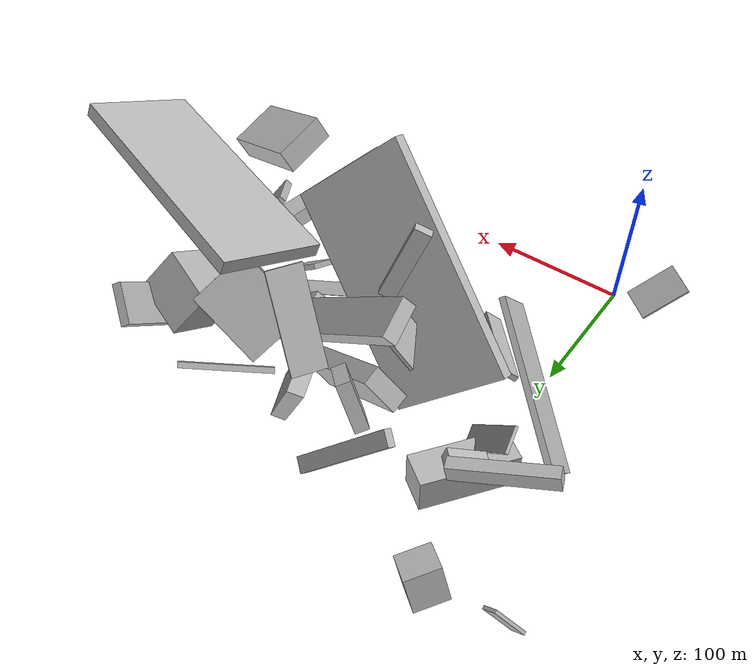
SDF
<sdf version="1.6">
 <world name="default">
  <model name="building_3">
   <static>0</static>
   <pose>195.42026539088207 225.33793126762018 46.4104570934266 1.0816639850656091 -0.5606428929745272 1.5744096195411685</pose>
   <link name="link">
    <gravity>0</gravity>
    <pose>0 0 20.0 0 0 0</pose>
    <collision name="collision"><geometry><box><size>39 35 40</size></box></geometry></collision>
    <visual name="visual">
     <cast_shadows>0</cast_shadows>
     <geometry><box><size>39 35 40</size></box></geometry>
     <material>
      <script>
       <uri>model://HANNAS_wall/materials/scripts</uri>
       <uri>model://HANNAS_wall/materials/textures</uri>
       <name>vrc/HANNAS_wall</name>
      </script>
     </material>
    </visual>
   </link>
  </model>
  <model name="building_7">
   <static>0</static>
   <pose>86.05593611526285 247.12048544273426 112.0473980282739 1.0489275624526189 0.6383340337828773 -0.2031847273433447</pose>
   <link name="link">
    <gravity>0</gravity>
    <pose>0 0 11.5 0 0 0</pose>
    <collision name="collision"><geometry><box><size>150 9 23</size></box></geometry></collision>
    <visual name="visual">
     <cast_shadows>0</cast_shadows>
     <geometry><box><size>150 9 23</size></box></geometry>
     <material>
      <script>
       <uri>model://HANNAS_wall/materials/scripts</uri>
       <uri>model://HANNAS_wall/materials/textures</uri>
       <name>vrc/HANNAS_wall</name>
      </script>
     </material>
    </visual>
   </link>
  </model>
  <model name="building_11">
   <static>0</static>
   <pose>-14.267220052164674 169.54531389760345 66.5304165311198 0.9552909154097537 -0.49813086864645206 -0.6816171053956798</pose>
   <link name="link">
    <gravity>0</gravity>
    <pose>0 0 2.0 0 0 0</pose>
    <collision name="collision"><geometry><box><size>106 34 4</size></box></geometry></collision>
    <visual name="visual">
     <cast_shadows>0</cast_shadows>
     <geometry><box><size>106 34 4</size></box></geometry>
     <material>
      <script>
       <uri>model://HANNAS_wall/materials/scripts</uri>
       <uri>model://HANNAS_wall/materials/textures</uri>
       <name>vrc/HANNAS_wall</name>
      </script>
     </material>
    </visual>
   </link>
  </model>
  <model name="building_21">
   <static>0</static>
   <pose>70.37461976060183 237.06652039944748 69.15286060212185 -0.5755333490579132 -1.090583508413947 -0.1477828022766647</pose>
   <link name="link">
    <gravity>0</gravity>
    <pose>0 0 12.0 0 0 0</pose>
    <collision name="collision"><geometry><box><size>33 9 24</size></box></geometry></collision>
    <visual name="visual">
     <cast_shadows>0</cast_shadows>
     <geometry><box><size>33 9 24</size></box></geometry>
     <material>
      <script>
       <uri>model://HANNAS_wall/materials/scripts</uri>
       <uri>model://HANNAS_wall/materials/textures</uri>
       <name>vrc/HANNAS_wall</name>
      </script>
     </material>
    </visual>
   </link>
  </model>
  <model name="building_33">
   <static>0</static>
   <pose>78.67021711334705 168.64807966165193 101.07768995363624 1.1875644406153136 -0.7772437303030574 -2.9666430102252206</pose>
   <link name="link">
    <gravity>0</gravity>
    <pose>0 0 3.5 0 0 0</pose>
    <collision name="collision"><geometry><box><size>90 150 7</size></box></geometry></collision>
    <visual name="visual">
     <cast_shadows>0</cast_shadows>
     <geometry><box><size>90 150 7</size></box></geometry>
     <material>
      <script>
       <uri>model://HANNAS_wall/materials/scripts</uri>
       <uri>model://HANNAS_wall/materials/textures</uri>
       <name>vrc/HANNAS_wall</name>
      </script>
     </material>
    </visual>
   </link>
  </model>
  <model name="building_35">
   <static>0</static>
   <pose>185.36432006196569 265.8515931960543 39.59105831705866 1.7106849768150694 0.7193593713389123 -0.8302468885812637</pose>
   <link name="link">
    <gravity>0</gravity>
    <pose>0 0 31.0 0 0 0</pose>
    <collision name="collision"><geometry><box><size>5 4 62</size></box></geometry></collision>
    <visual name="visual">
     <cast_shadows>0</cast_shadows>
     <geometry><box><size>5 4 62</size></box></geometry>
     <material>
      <script>
       <uri>model://HANNAS_wall/materials/scripts</uri>
       <uri>model://HANNAS_wall/materials/textures</uri>
       <name>vrc/HANNAS_wall</name>
      </script>
     </material>
    </visual>
   </link>
  </model>
  <model name="building_37">
   <static>0</static>
   <pose>125.9512153068377 131.14434400146897 47.897196419081325 1.2257859646127207 0.6727540239209071 -1.805277169994967</pose>
   <link name="link">
    <gravity>0</gravity>
    <pose>0 0 21.5 0 0 0</pose>
    <collision name="collision"><geometry><box><size>4 42 43</size></box></geometry></collision>
    <visual name="visual">
     <cast_shadows>0</cast_shadows>
     <geometry><box><size>4 42 43</size></box></geometry>
     <material>
      <script>
       <uri>model://HANNAS_wall/materials/scripts</uri>
       <uri>model://HANNAS_wall/materials/textures</uri>
       <name>vrc/HANNAS_wall</name>
      </script>
     </material>
    </visual>
   </link>
  </model>
  <model name="building_44">
   <static>0</static>
   <pose>205.85368709940622 123.36305713672164 118.00246873415858 -0.36132992266183683 -0.3562273729038361 -1.7276084758862755</pose>
   <link name="link">
    <gravity>0</gravity>
    <pose>0 0 8.0 0 0 0</pose>
    <collision name="collision"><geometry><box><size>34 60 16</size></box></geometry></collision>
    <visual name="visual">
     <cast_shadows>0</cast_shadows>
     <geometry><box><size>34 60 16</size></box></geometry>
     <material>
      <script>
       <uri>model://HANNAS_wall/materials/scripts</uri>
       <uri>model://HANNAS_wall/materials/textures</uri>
       <name>vrc/HANNAS_wall</name>
      </script>
     </material>
    </visual>
   </link>
  </model>
  <model name="building_45">
   <static>0</static>
   <pose>135.25890932713727 266.9059065566778 103.3827053272004 -0.8282006260108365 -0.5972555595209849 2.2024481975542107</pose>
   <link name="link">
    <gravity>0</gravity>
    <pose>0 0 20.0 0 0 0</pose>
    <collision name="collision"><geometry><box><size>4 49 40</size></box></geometry></collision>
    <visual name="visual">
     <cast_shadows>0</cast_shadows>
     <geometry><box><size>4 49 40</size></box></geometry>
     <material>
      <script>
       <uri>model://HANNAS_wall/materials/scripts</uri>
       <uri>model://HANNAS_wall/materials/textures</uri>
       <name>vrc/HANNAS_wall</name>
      </script>
     </material>
    </visual>
   </link>
  </model>
  <model name="building_51">
   <static>0</static>
   <pose>63.14234940966295 209.33302091371922 128.9760427014881 -0.1303777406892646 0.3729036915264912 -2.7498113966429734</pose>
   <link name="link">
    <gravity>0</gravity>
    <pose>0 0 24.0 0 0 0</pose>
    <collision name="collision"><geometry><box><size>10 6 48</size></box></geometry></collision>
    <visual name="visual">
     <cast_shadows>0</cast_shadows>
     <geometry><box><size>10 6 48</size></box></geometry>
     <material>
      <script>
       <uri>model://HANNAS_wall/materials/scripts</uri>
       <uri>model://HANNAS_wall/materials/textures</uri>
       <name>vrc/HANNAS_wall</name>
      </script>
     </material>
    </visual>
   </link>
  </model>
  <model name="building_52">
   <static>0</static>
   <pose>163.72500202545913 117.32594469219725 10.573570925350534 -3.109861516344146 -0.84118649028014 2.0622811324620764</pose>
   <link name="link">
    <gravity>0</gravity>
    <pose>0 0 5.0 0 0 0</pose>
    <collision name="collision"><geometry><box><size>4 150 10</size></box></geometry></collision>
    <visual name="visual">
     <cast_shadows>0</cast_shadows>
     <geometry><box><size>4 150 10</size></box></geometry>
     <material>
      <script>
       <uri>model://HANNAS_wall/materials/scripts</uri>
       <uri>model://HANNAS_wall/materials/textures</uri>
       <name>vrc/HANNAS_wall</name>
      </script>
     </material>
    </visual>
   </link>
  </model>
  <model name="building_59">
   <static>0</static>
   <pose>189.01144143217792 221.2261807380886 154.64841046697114 0.34329528258387787 -0.12096177290458986 -0.2903479322402377</pose>
   <link name="link">
    <gravity>0</gravity>
    <pose>0 0 4.0 0 0 0</pose>
    <collision name="collision"><geometry><box><size>150 65 8</size></box></geometry></collision>
    <visual name="visual">
     <cast_shadows>0</cast_shadows>
     <geometry><box><size>150 65 8</size></box></geometry>
     <material>
      <script>
       <uri>model://HANNAS_wall/materials/scripts</uri>
       <uri>model://HANNAS_wall/materials/textures</uri>
       <name>vrc/HANNAS_wall</name>
      </script>
     </material>
    </visual>
   </link>
  </model>
  <model name="building_62">
   <static>0</static>
   <pose>-12.277923699019935 282.9733836791679 22.664456992917508 -2.9540474332470494 -0.2868767385849158 2.4456137884940516</pose>
   <link name="link">
    <gravity>0</gravity>
    <pose>0 0 13.0 0 0 0</pose>
    <collision name="collision"><geometry><box><size>21 23 26</size></box></geometry></collision>
    <visual name="visual">
     <cast_shadows>0</cast_shadows>
     <geometry><box><size>21 23 26</size></box></geometry>
     <material>
      <script>
       <uri>model://HANNAS_wall/materials/scripts</uri>
       <uri>model://HANNAS_wall/materials/textures</uri>
       <name>vrc/HANNAS_wall</name>
      </script>
     </material>
    </visual>
   </link>
  </model>
  <model name="building_73">
   <static>0</static>
   <pose>183.00014097848364 196.0419610371443 92.73857724698912 1.8896955971227478 -1.2867830262680138 -0.34923915788439935</pose>
   <link name="link">
    <gravity>0</gravity>
    <pose>0 0 75.0 0 0 0</pose>
    <collision name="collision"><geometry><box><size>10 19 150</size></box></geometry></collision>
    <visual name="visual">
     <cast_shadows>0</cast_shadows>
     <geometry><box><size>10 19 150</size></box></geometry>
     <material>
      <script>
       <uri>model://HANNAS_wall/materials/scripts</uri>
       <uri>model://HANNAS_wall/materials/textures</uri>
       <name>vrc/HANNAS_wall</name>
      </script>
     </material>
    </visual>
   </link>
  </model>
  <model name="building_76">
   <static>0</static>
   <pose>29.02026047816088 111.46787203355504 35.52923018993563 -0.7336816280698586 0.728466891361761 -2.9913453259785086</pose>
   <link name="link">
    <gravity>0</gravity>
    <pose>0 0 2.0 0 0 0</pose>
    <collision name="collision"><geometry><box><size>7 5 4</size></box></geometry></collision>
    <visual name="visual">
     <cast_shadows>0</cast_shadows>
     <geometry><box><size>7 5 4</size></box></geometry>
     <material>
      <script>
       <uri>model://HANNAS_wall/materials/scripts</uri>
       <uri>model://HANNAS_wall/materials/textures</uri>
       <name>vrc/HANNAS_wall</name>
      </script>
     </material>
    </visual>
   </link>
  </model>
  <model name="building_83">
   <static>0</static>
   <pose>135.22747584856407 175.08870291533748 35.08543311751245 -0.4061028398068003 0.6629741726805959 -0.03187633299158759</pose>
   <link name="link">
    <gravity>0</gravity>
    <pose>0 0 13.0 0 0 0</pose>
    <collision name="collision"><geometry><box><size>35 10 26</size></box></geometry></collision>
    <visual name="visual">
     <cast_shadows>0</cast_shadows>
     <geometry><box><size>35 10 26</size></box></geometry>
     <material>
      <script>
       <uri>model://HANNAS_wall/materials/scripts</uri>
       <uri>model://HANNAS_wall/materials/textures</uri>
       <name>vrc/HANNAS_wall</name>
      </script>
     </material>
    </visual>
   </link>
  </model>
  <model name="building_92">
   <static>0</static>
   <pose>17.54820165503137 129.22832504345837 16.89306235181096 -2.0354644913992175 -0.9339610758481214 -2.0904301561457785</pose>
   <link name="link">
    <gravity>0</gravity>
    <pose>0 0 38.5 0 0 0</pose>
    <collision name="collision"><geometry><box><size>4 13 77</size></box></geometry></collision>
    <visual name="visual">
     <cast_shadows>0</cast_shadows>
     <geometry><box><size>4 13 77</size></box></geometry>
     <material>
      <script>
       <uri>model://HANNAS_wall/materials/scripts</uri>
       <uri>model://HANNAS_wall/materials/textures</uri>
       <name>vrc/HANNAS_wall</name>
      </script>
     </material>
    </visual>
   </link>
  </model>
  <model name="building_104">
   <static>0</static>
   <pose>-6.913493799234452 230.06073946557922 34.11894202666595 0.0012342434952873366 0.03734058517245965 -0.6242067665168186</pose>
   <link name="link">
    <gravity>0</gravity>
    <pose>0 0 11.5 0 0 0</pose>
    <collision name="collision"><geometry><box><size>22 61 23</size></box></geometry></collision>
    <visual name="visual">
     <cast_shadows>0</cast_shadows>
     <geometry><box><size>22 61 23</size></box></geometry>
     <material>
      <script>
       <uri>model://HANNAS_wall/materials/scripts</uri>
       <uri>model://HANNAS_wall/materials/textures</uri>
       <name>vrc/HANNAS_wall</name>
      </script>
     </material>
    </visual>
   </link>
  </model>
  <model name="building_105">
   <static>0</static>
   <pose>-39.571243731090355 253.97198424776988 102.90812289882922 -2.895339288208029 0.01311896987408087 1.9196011122633043</pose>
   <link name="link">
    <gravity>0</gravity>
    <pose>0 0 5.0 0 0 0</pose>
    <collision name="collision"><geometry><box><size>8 59 10</size></box></geometry></collision>
    <visual name="visual">
     <cast_shadows>0</cast_shadows>
     <geometry><box><size>8 59 10</size></box></geometry>
     <material>
      <script>
       <uri>model://HANNAS_wall/materials/scripts</uri>
       <uri>model://HANNAS_wall/materials/textures</uri>
       <name>vrc/HANNAS_wall</name>
      </script>
     </material>
    </visual>
   </link>
  </model>
  <model name="building_106">
   <static>0</static>
   <pose>185.6232775981549 140.63752975330829 30.312286115796933 -2.1514322398792762 -0.3888884888313913 -2.7755836456963587</pose>
   <link name="link">
    <gravity>0</gravity>
    <pose>0 0 16.0 0 0 0</pose>
    <collision name="collision"><geometry><box><size>21 4 32</size></box></geometry></collision>
    <visual name="visual">
     <cast_shadows>0</cast_shadows>
     <geometry><box><size>21 4 32</size></box></geometry>
     <material>
      <script>
       <uri>model://HANNAS_wall/materials/scripts</uri>
       <uri>model://HANNAS_wall/materials/textures</uri>
       <name>vrc/HANNAS_wall</name>
      </script>
     </material>
    </visual>
   </link>
  </model>
  <model name="building_117">
   <static>0</static>
   <pose>64.80752201216177 144.29504587877256 39.4118226113881 1.8365164007991188 -0.13270314268653696 1.7200852341421404</pose>
   <link name="link">
    <gravity>0</gravity>
    <pose>0 0 11.5 0 0 0</pose>
    <collision name="collision"><geometry><box><size>18 59 23</size></box></geometry></collision>
    <visual name="visual">
     <cast_shadows>0</cast_shadows>
     <geometry><box><size>18 59 23</size></box></geometry>
     <material>
      <script>
       <uri>model://HANNAS_wall/materials/scripts</uri>
       <uri>model://HANNAS_wall/materials/textures</uri>
       <name>vrc/HANNAS_wall</name>
      </script>
     </material>
    </visual>
   </link>
  </model>
  <model name="building_129">
   <static>0</static>
   <pose>237.1620615781641 243.48585223396412 64.81906615550486 2.348437759858969 -0.5174773957632937 -2.6627367283514913</pose>
   <link name="link">
    <gravity>0</gravity>
    <pose>0 0 14.0 0 0 0</pose>
    <collision name="collision"><geometry><box><size>7 44 28</size></box></geometry></collision>
    <visual name="visual">
     <cast_shadows>0</cast_shadows>
     <geometry><box><size>7 44 28</size></box></geometry>
     <material>
      <script>
       <uri>model://HANNAS_wall/materials/scripts</uri>
       <uri>model://HANNAS_wall/materials/textures</uri>
       <name>vrc/HANNAS_wall</name>
      </script>
     </material>
    </visual>
   </link>
  </model>
  <model name="building_130">
   <static>0</static>
   <pose>-68.19390903305677 293.2186109180943 39.436252560092605 -0.9222817928658865 0.3238034976485244 1.6853466080443371</pose>
   <link name="link">
    <gravity>0</gravity>
    <pose>0 0 4.5 0 0 0</pose>
    <collision name="collision"><geometry><box><size>2 26 9</size></box></geometry></collision>
    <visual name="visual">
     <cast_shadows>0</cast_shadows>
     <geometry><box><size>2 26 9</size></box></geometry>
     <material>
      <script>
       <uri>model://HANNAS_wall/materials/scripts</uri>
       <uri>model://HANNAS_wall/materials/textures</uri>
       <name>vrc/HANNAS_wall</name>
      </script>
     </material>
    </visual>
   </link>
  </model>
  <model name="building_133">
   <static>0</static>
   <pose>97.06714634007658 247.03435014727094 60.50105104979787 0.8882246508503243 -1.0291531950012462 2.6162963566584616</pose>
   <link name="link">
    <gravity>0</gravity>
    <pose>0 0 5.0 0 0 0</pose>
    <collision name="collision"><geometry><box><size>80 28 10</size></box></geometry></collision>
    <visual name="visual">
     <cast_shadows>0</cast_shadows>
     <geometry><box><size>80 28 10</size></box></geometry>
     <material>
      <script>
       <uri>model://HANNAS_wall/materials/scripts</uri>
       <uri>model://HANNAS_wall/materials/textures</uri>
       <name>vrc/HANNAS_wall</name>
      </script>
     </material>
    </visual>
   </link>
  </model>
  <model name="building_137">
   <static>0</static>
   <pose>64.66612124072012 275.82161573262465 123.346261881852 0.030049584848994962 -0.5985594879696629 2.549060890759872</pose>
   <link name="link">
    <gravity>0</gravity>
    <pose>0 0 28.5 0 0 0</pose>
    <collision name="collision"><geometry><box><size>2 20 57</size></box></geometry></collision>
    <visual name="visual">
     <cast_shadows>0</cast_shadows>
     <geometry><box><size>2 20 57</size></box></geometry>
     <material>
      <script>
       <uri>model://HANNAS_wall/materials/scripts</uri>
       <uri>model://HANNAS_wall/materials/textures</uri>
       <name>vrc/HANNAS_wall</name>
      </script>
     </material>
    </visual>
   </link>
  </model>
  <model name="building_138">
   <static>0</static>
   <pose>213.94858342520757 137.64777334972206 74.3590871153996 1.0402849581224323 0.6506737399985366 -2.8593779982603205</pose>
   <link name="link">
    <gravity>0</gravity>
    <pose>0 0 23.5 0 0 0</pose>
    <collision name="collision"><geometry><box><size>5 42 47</size></box></geometry></collision>
    <visual name="visual">
     <cast_shadows>0</cast_shadows>
     <geometry><box><size>5 42 47</size></box></geometry>
     <material>
      <script>
       <uri>model://HANNAS_wall/materials/scripts</uri>
       <uri>model://HANNAS_wall/materials/textures</uri>
       <name>vrc/HANNAS_wall</name>
      </script>
     </material>
    </visual>
   </link>
  </model>
  <model name="building_168">
   <static>0</static>
   <pose>87.32703270826968 203.6176378586564 45.24539402709189 2.2016922046163194 0.90290575404877 -2.6982962483482145</pose>
   <link name="link">
    <gravity>0</gravity>
    <pose>0 0 6.5 0 0 0</pose>
    <collision name="collision"><geometry><box><size>29 80 13</size></box></geometry></collision>
    <visual name="visual">
     <cast_shadows>0</cast_shadows>
     <geometry><box><size>29 80 13</size></box></geometry>
     <material>
      <script>
       <uri>model://HANNAS_wall/materials/scripts</uri>
       <uri>model://HANNAS_wall/materials/textures</uri>
       <name>vrc/HANNAS_wall</name>
      </script>
     </material>
    </visual>
   </link>
  </model>
  <model name="building_175">
   <static>0</static>
   <pose>66.38353459090985 248.8039423005897 32.401882062361516 2.3889743983548146 -0.768880579782573 -2.874935681079974</pose>
   <link name="link">
    <gravity>0</gravity>
    <pose>0 0 5.5 0 0 0</pose>
    <collision name="collision"><geometry><box><size>80 6 11</size></box></geometry></collision>
    <visual name="visual">
     <cast_shadows>0</cast_shadows>
     <geometry><box><size>80 6 11</size></box></geometry>
     <material>
      <script>
       <uri>model://HANNAS_wall/materials/scripts</uri>
       <uri>model://HANNAS_wall/materials/textures</uri>
       <name>vrc/HANNAS_wall</name>
      </script>
     </material>
    </visual>
   </link>
  </model>
  <model name="building_176">
   <static>0</static>
   <pose>71.79172884778409 176.63262512358804 26.649429080537914 2.1170626376873276 -0.5517344262606907 2.808476594743015</pose>
   <link name="link">
    <gravity>0</gravity>
    <pose>0 0 3.0 0 0 0</pose>
    <collision name="collision"><geometry><box><size>11 14 6</size></box></geometry></collision>
    <visual name="visual">
     <cast_shadows>0</cast_shadows>
     <geometry><box><size>11 14 6</size></box></geometry>
     <material>
      <script>
       <uri>model://HANNAS_wall/materials/scripts</uri>
       <uri>model://HANNAS_wall/materials/textures</uri>
       <name>vrc/HANNAS_wall</name>
      </script>
     </material>
    </visual>
   </link>
  </model>
  <model name="building_177">
   <static>0</static>
   <pose>36.36031559879537 233.95108868315958 116.4944678059904 1.8762555518330093 0.644238741574066 0.7275534430334829</pose>
   <link name="link">
    <gravity>0</gravity>
    <pose>0 0 23.0 0 0 0</pose>
    <collision name="collision"><geometry><box><size>2 20 46</size></box></geometry></collision>
    <visual name="visual">
     <cast_shadows>0</cast_shadows>
     <geometry><box><size>2 20 46</size></box></geometry>
     <material>
      <script>
       <uri>model://HANNAS_wall/materials/scripts</uri>
       <uri>model://HANNAS_wall/materials/textures</uri>
       <name>vrc/HANNAS_wall</name>
      </script>
     </material>
    </visual>
   </link>
  </model>
  <model name="building_186">
   <static>0</static>
   <pose>178.54529567309123 177.8247862969847 16.692428741476395 2.775646200395157 -0.026535956834260705 -2.868853882836561</pose>
   <link name="link">
    <gravity>0</gravity>
    <pose>0 0 1.0 0 0 0</pose>
    <collision name="collision"><geometry><box><size>8 70 2</size></box></geometry></collision>
    <visual name="visual">
     <cast_shadows>0</cast_shadows>
     <geometry><box><size>8 70 2</size></box></geometry>
     <material>
      <script>
       <uri>model://HANNAS_wall/materials/scripts</uri>
       <uri>model://HANNAS_wall/materials/textures</uri>
       <name>vrc/HANNAS_wall</name>
      </script>
     </material>
    </visual>
   </link>
  </model>
  <model name="building_187">
   <static>0</static>
   <pose>-12.858504750107324 237.67782043850406 71.51294466742263 3.103525210969902 0.3297168714652058 -2.374098837153555</pose>
   <link name="link">
    <gravity>0</gravity>
    <pose>0 0 4.0 0 0 0</pose>
    <collision name="collision"><geometry><box><size>24 10 8</size></box></geometry></collision>
    <visual name="visual">
     <cast_shadows>0</cast_shadows>
     <geometry><box><size>24 10 8</size></box></geometry>
     <material>
      <script>
       <uri>model://HANNAS_wall/materials/scripts</uri>
       <uri>model://HANNAS_wall/materials/textures</uri>
       <name>vrc/HANNAS_wall</name>
      </script>
     </material>
    </visual>
   </link>
  </model>
  <model name="building_189">
   <static>0</static>
   <pose>-51.543279958259006 140.06482291107335 132.3747554936148 0.4240246590987083 0.8739414864930021 -1.7829739478902085</pose>
   <link name="link">
    <gravity>0</gravity>
    <pose>0 0 13.5 0 0 0</pose>
    <collision name="collision"><geometry><box><size>2 17 27</size></box></geometry></collision>
    <visual name="visual">
     <cast_shadows>0</cast_shadows>
     <geometry><box><size>2 17 27</size></box></geometry>
     <material>
      <script>
       <uri>model://HANNAS_wall/materials/scripts</uri>
       <uri>model://HANNAS_wall/materials/textures</uri>
       <name>vrc/HANNAS_wall</name>
      </script>
     </material>
    </visual>
   </link>
  </model>
  <model name="building_201">
   <static>0</static>
   <pose>1.2388449978585143 211.19230190224826 49.15996269450741 -0.6054296250381402 0.4722846684203091 1.7546415137542337</pose>
   <link name="link">
    <gravity>0</gravity>
    <pose>0 0 25.0 0 0 0</pose>
    <collision name="collision"><geometry><box><size>16 2 50</size></box></geometry></collision>
    <visual name="visual">
     <cast_shadows>0</cast_shadows>
     <geometry><box><size>16 2 50</size></box></geometry>
     <material>
      <script>
       <uri>model://HANNAS_wall/materials/scripts</uri>
       <uri>model://HANNAS_wall/materials/textures</uri>
       <name>vrc/HANNAS_wall</name>
      </script>
     </material>
    </visual>
   </link>
  </model>
 </world>
</sdf>
